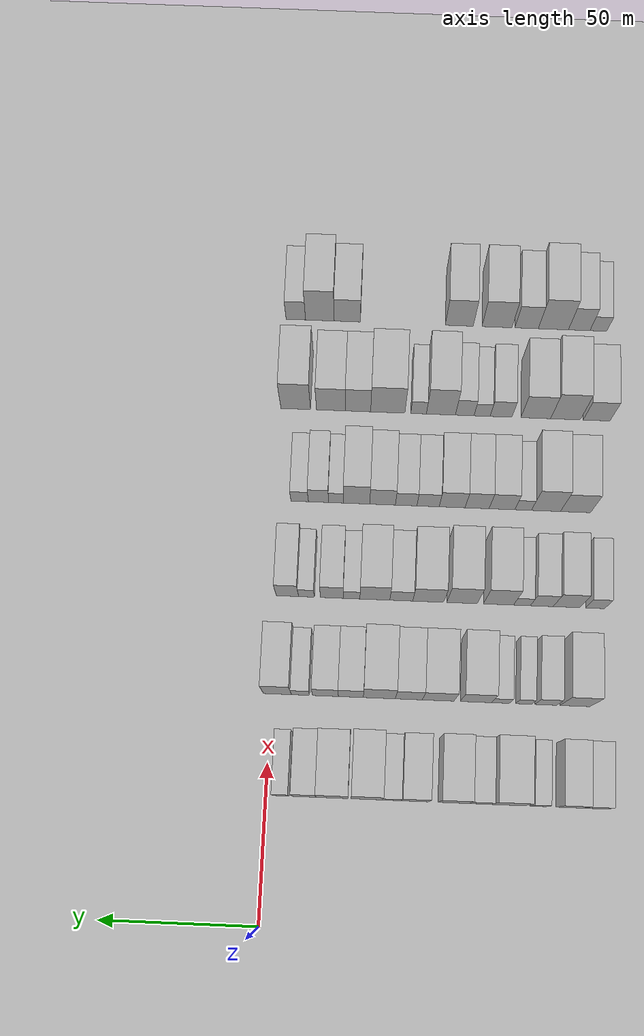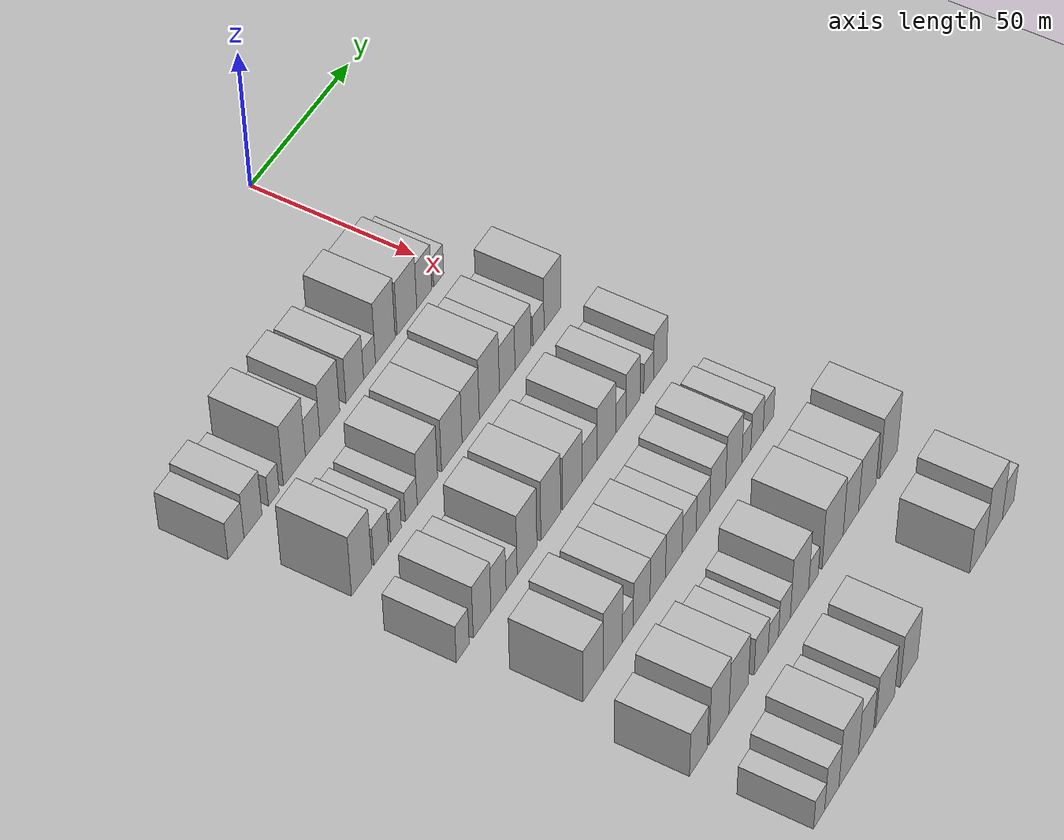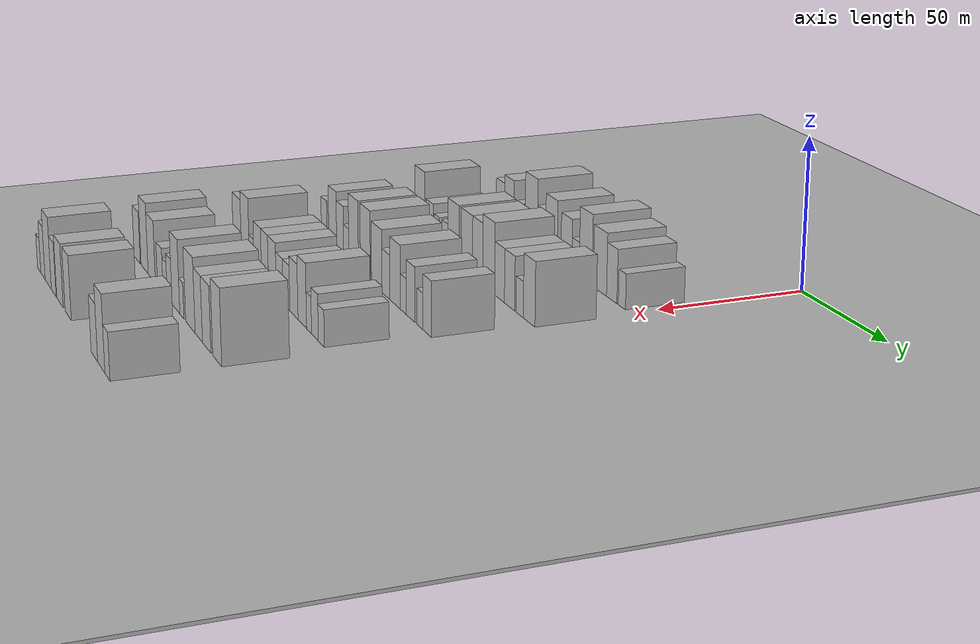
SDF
<sdf version="1.6">
 <world name="default">
  <include><name>ground_plane_1</name><uri>model://HANNAS_ground_plane</uri></include>
  <include>
   <name>ground_plane_2</name>
   <uri>model://HANNAS_ground_plane</uri>
   <pose>100 0 0  0 0 0</pose>
  </include>
  <model name="building_53">
   <static>1</static>
   <pose>50.0000 -103.3089 0 0.000000 0.000000 0.000000</pose>
   <link name="link">
    <pose>0 0 7.50 0 0 0</pose>
    <collision name="collision"><geometry><box><size>20.0000 7.4060 15.0000</size></box></geometry></collision>
    <visual name="visual">
     <cast_shadows>0</cast_shadows>
     <geometry><box><size>20.0000 7.4060 15.0000</size></box></geometry>
     <material>
      <script>
       <uri>model://HANNAS_wall/materials/scripts</uri>
       <uri>model://HANNAS_wall/materials/textures</uri>
       <name>vrc/HANNAS_wall</name>
      </script>
     </material>
    </visual>
   </link>
  </model>
  <model name="building_54">
   <static>1</static>
   <pose>50.0000 -95.4182 0 0.000000 0.000000 0.000000</pose>
   <link name="link">
    <pose>0 0 9.00 0 0 0</pose>
    <collision name="collision"><geometry><box><size>20.0000 8.3755 18.0000</size></box></geometry></collision>
    <visual name="visual">
     <cast_shadows>0</cast_shadows>
     <geometry><box><size>20.0000 8.3755 18.0000</size></box></geometry>
     <material>
      <script>
       <uri>model://HANNAS_wall/materials/scripts</uri>
       <uri>model://HANNAS_wall/materials/textures</uri>
       <name>vrc/HANNAS_wall</name>
      </script>
     </material>
    </visual>
   </link>
  </model>
  <model name="building_55">
   <static>1</static>
   <pose>50.0000 -85.7051 0 0.000000 0.000000 0.000000</pose>
   <link name="link">
    <pose>0 0 6.00 0 0 0</pose>
    <collision name="collision"><geometry><box><size>20.0000 5.0507 12.0000</size></box></geometry></collision>
    <visual name="visual">
     <cast_shadows>0</cast_shadows>
     <geometry><box><size>20.0000 5.0507 12.0000</size></box></geometry>
     <material>
      <script>
       <uri>model://HANNAS_wall/materials/scripts</uri>
       <uri>model://HANNAS_wall/materials/textures</uri>
       <name>vrc/HANNAS_wall</name>
      </script>
     </material>
    </visual>
   </link>
  </model>
  <model name="building_56">
   <static>1</static>
   <pose>50.0000 -75.9597 0 0.000000 0.000000 0.000000</pose>
   <link name="link">
    <pose>0 0 12.00 0 0 0</pose>
    <collision name="collision"><geometry><box><size>20.0000 10.4400 24.0000</size></box></geometry></collision>
    <visual name="visual">
     <cast_shadows>0</cast_shadows>
     <geometry><box><size>20.0000 10.4400 24.0000</size></box></geometry>
     <material>
      <script>
       <uri>model://HANNAS_wall/materials/scripts</uri>
       <uri>model://HANNAS_wall/materials/textures</uri>
       <name>vrc/HANNAS_wall</name>
      </script>
     </material>
    </visual>
   </link>
  </model>
  <model name="building_57">
   <static>1</static>
   <pose>50.0000 -67.2400 0 0.000000 0.000000 0.000000</pose>
   <link name="link">
    <pose>0 0 7.50 0 0 0</pose>
    <collision name="collision"><geometry><box><size>20.0000 6.9994 15.0000</size></box></geometry></collision>
    <visual name="visual">
     <cast_shadows>0</cast_shadows>
     <geometry><box><size>20.0000 6.9994 15.0000</size></box></geometry>
     <material>
      <script>
       <uri>model://HANNAS_wall/materials/scripts</uri>
       <uri>model://HANNAS_wall/materials/textures</uri>
       <name>vrc/HANNAS_wall</name>
      </script>
     </material>
    </visual>
   </link>
  </model>
  <model name="building_58">
   <static>1</static>
   <pose>50.0000 -58.9612 0 0.000000 0.000000 0.000000</pose>
   <link name="link">
    <pose>0 0 10.50 0 0 0</pose>
    <collision name="collision"><geometry><box><size>20.0000 9.5583 21.0000</size></box></geometry></collision>
    <visual name="visual">
     <cast_shadows>0</cast_shadows>
     <geometry><box><size>20.0000 9.5583 21.0000</size></box></geometry>
     <material>
      <script>
       <uri>model://HANNAS_wall/materials/scripts</uri>
       <uri>model://HANNAS_wall/materials/textures</uri>
       <name>vrc/HANNAS_wall</name>
      </script>
     </material>
    </visual>
   </link>
  </model>
  <model name="building_59">
   <static>1</static>
   <pose>50.0000 -46.8524 0 0.000000 0.000000 0.000000</pose>
   <link name="link">
    <pose>0 0 9.00 0 0 0</pose>
    <collision name="collision"><geometry><box><size>20.0000 8.6594 18.0000</size></box></geometry></collision>
    <visual name="visual">
     <cast_shadows>0</cast_shadows>
     <geometry><box><size>20.0000 8.6594 18.0000</size></box></geometry>
     <material>
      <script>
       <uri>model://HANNAS_wall/materials/scripts</uri>
       <uri>model://HANNAS_wall/materials/textures</uri>
       <name>vrc/HANNAS_wall</name>
      </script>
     </material>
    </visual>
   </link>
  </model>
  <model name="building_60">
   <static>1</static>
   <pose>50.0000 -39.5845 0 0.000000 0.000000 0.000000</pose>
   <link name="link">
    <pose>0 0 6.00 0 0 0</pose>
    <collision name="collision"><geometry><box><size>20.0000 5.8764 12.0000</size></box></geometry></collision>
    <visual name="visual">
     <cast_shadows>0</cast_shadows>
     <geometry><box><size>20.0000 5.8764 12.0000</size></box></geometry>
     <material>
      <script>
       <uri>model://HANNAS_wall/materials/scripts</uri>
       <uri>model://HANNAS_wall/materials/textures</uri>
       <name>vrc/HANNAS_wall</name>
      </script>
     </material>
    </visual>
   </link>
  </model>
  <model name="building_61">
   <static>1</static>
   <pose>50.0000 -31.7604 0 0.000000 0.000000 0.000000</pose>
   <link name="link">
    <pose>0 0 12.00 0 0 0</pose>
    <collision name="collision"><geometry><box><size>20.0000 9.7716 24.0000</size></box></geometry></collision>
    <visual name="visual">
     <cast_shadows>0</cast_shadows>
     <geometry><box><size>20.0000 9.7716 24.0000</size></box></geometry>
     <material>
      <script>
       <uri>model://HANNAS_wall/materials/scripts</uri>
       <uri>model://HANNAS_wall/materials/textures</uri>
       <name>vrc/HANNAS_wall</name>
      </script>
     </material>
    </visual>
   </link>
  </model>
  <model name="building_62">
   <static>1</static>
   <pose>50.0000 -20.9201 0 0.000000 0.000000 0.000000</pose>
   <link name="link">
    <pose>0 0 10.50 0 0 0</pose>
    <collision name="collision"><geometry><box><size>20.0000 9.9090 21.0000</size></box></geometry></collision>
    <visual name="visual">
     <cast_shadows>0</cast_shadows>
     <geometry><box><size>20.0000 9.9090 21.0000</size></box></geometry>
     <material>
      <script>
       <uri>model://HANNAS_wall/materials/scripts</uri>
       <uri>model://HANNAS_wall/materials/textures</uri>
       <name>vrc/HANNAS_wall</name>
      </script>
     </material>
    </visual>
   </link>
  </model>
  <model name="building_63">
   <static>1</static>
   <pose>50.0000 -12.1721 0 0.000000 0.000000 0.000000</pose>
   <link name="link">
    <pose>0 0 9.00 0 0 0</pose>
    <collision name="collision"><geometry><box><size>20.0000 7.5871 18.0000</size></box></geometry></collision>
    <visual name="visual">
     <cast_shadows>0</cast_shadows>
     <geometry><box><size>20.0000 7.5871 18.0000</size></box></geometry>
     <material>
      <script>
       <uri>model://HANNAS_wall/materials/scripts</uri>
       <uri>model://HANNAS_wall/materials/textures</uri>
       <name>vrc/HANNAS_wall</name>
      </script>
     </material>
    </visual>
   </link>
  </model>
  <model name="building_64">
   <static>1</static>
   <pose>50.0000 -4.8133 0 0.000000 0.000000 0.000000</pose>
   <link name="link">
    <pose>0 0 6.00 0 0 0</pose>
    <collision name="collision"><geometry><box><size>20.0000 5.1306 12.0000</size></box></geometry></collision>
    <visual name="visual">
     <cast_shadows>0</cast_shadows>
     <geometry><box><size>20.0000 5.1306 12.0000</size></box></geometry>
     <material>
      <script>
       <uri>model://HANNAS_wall/materials/scripts</uri>
       <uri>model://HANNAS_wall/materials/textures</uri>
       <name>vrc/HANNAS_wall</name>
      </script>
     </material>
    </visual>
   </link>
  </model>
  <model name="building_175">
   <static>1</static>
   <pose>82.0000 -97.1212 0 0.000000 0.000000 0.000000</pose>
   <link name="link">
    <pose>0 0 12.00 0 0 0</pose>
    <collision name="collision"><geometry><box><size>20.0000 9.6099 24.0000</size></box></geometry></collision>
    <visual name="visual">
     <cast_shadows>0</cast_shadows>
     <geometry><box><size>20.0000 9.6099 24.0000</size></box></geometry>
     <material>
      <script>
       <uri>model://HANNAS_wall/materials/scripts</uri>
       <uri>model://HANNAS_wall/materials/textures</uri>
       <name>vrc/HANNAS_wall</name>
      </script>
     </material>
    </visual>
   </link>
  </model>
  <model name="building_176">
   <static>1</static>
   <pose>82.0000 -87.8058 0 0.000000 0.000000 0.000000</pose>
   <link name="link">
    <pose>0 0 7.50 0 0 0</pose>
    <collision name="collision"><geometry><box><size>20.0000 7.0210 15.0000</size></box></geometry></collision>
    <visual name="visual">
     <cast_shadows>0</cast_shadows>
     <geometry><box><size>20.0000 7.0210 15.0000</size></box></geometry>
     <material>
      <script>
       <uri>model://HANNAS_wall/materials/scripts</uri>
       <uri>model://HANNAS_wall/materials/textures</uri>
       <name>vrc/HANNAS_wall</name>
      </script>
     </material>
    </visual>
   </link>
  </model>
  <model name="building_177">
   <static>1</static>
   <pose>82.0000 -80.7392 0 0.000000 0.000000 0.000000</pose>
   <link name="link">
    <pose>0 0 6.00 0 0 0</pose>
    <collision name="collision"><geometry><box><size>20.0000 5.1122 12.0000</size></box></geometry></collision>
    <visual name="visual">
     <cast_shadows>0</cast_shadows>
     <geometry><box><size>20.0000 5.1122 12.0000</size></box></geometry>
     <material>
      <script>
       <uri>model://HANNAS_wall/materials/scripts</uri>
       <uri>model://HANNAS_wall/materials/textures</uri>
       <name>vrc/HANNAS_wall</name>
      </script>
     </material>
    </visual>
   </link>
  </model>
  <model name="building_178">
   <static>1</static>
   <pose>82.0000 -73.3122 0 0.000000 0.000000 0.000000</pose>
   <link name="link">
    <pose>0 0 6.00 0 0 0</pose>
    <collision name="collision"><geometry><box><size>20.0000 5.7417 12.0000</size></box></geometry></collision>
    <visual name="visual">
     <cast_shadows>0</cast_shadows>
     <geometry><box><size>20.0000 5.7417 12.0000</size></box></geometry>
     <material>
      <script>
       <uri>model://HANNAS_wall/materials/scripts</uri>
       <uri>model://HANNAS_wall/materials/textures</uri>
       <name>vrc/HANNAS_wall</name>
      </script>
     </material>
    </visual>
   </link>
  </model>
  <model name="building_179">
   <static>1</static>
   <pose>82.0000 -65.4597 0 0.000000 0.000000 0.000000</pose>
   <link name="link">
    <pose>0 0 10.50 0 0 0</pose>
    <collision name="collision"><geometry><box><size>20.0000 9.9633 21.0000</size></box></geometry></collision>
    <visual name="visual">
     <cast_shadows>0</cast_shadows>
     <geometry><box><size>20.0000 9.9633 21.0000</size></box></geometry>
     <material>
      <script>
       <uri>model://HANNAS_wall/materials/scripts</uri>
       <uri>model://HANNAS_wall/materials/textures</uri>
       <name>vrc/HANNAS_wall</name>
      </script>
     </material>
    </visual>
   </link>
  </model>
  <model name="building_180">
   <static>1</static>
   <pose>82.0000 -53.4009 0 0.000000 0.000000 0.000000</pose>
   <link name="link">
    <pose>0 0 10.50 0 0 0</pose>
    <collision name="collision"><geometry><box><size>20.0000 10.1542 21.0000</size></box></geometry></collision>
    <visual name="visual">
     <cast_shadows>0</cast_shadows>
     <geometry><box><size>20.0000 10.1542 21.0000</size></box></geometry>
     <material>
      <script>
       <uri>model://HANNAS_wall/materials/scripts</uri>
       <uri>model://HANNAS_wall/materials/textures</uri>
       <name>vrc/HANNAS_wall</name>
      </script>
     </material>
    </visual>
   </link>
  </model>
  <model name="building_181">
   <static>1</static>
   <pose>82.0000 -43.9922 0 0.000000 0.000000 0.000000</pose>
   <link name="link">
    <pose>0 0 10.50 0 0 0</pose>
    <collision name="collision"><geometry><box><size>20.0000 8.6633 21.0000</size></box></geometry></collision>
    <visual name="visual">
     <cast_shadows>0</cast_shadows>
     <geometry><box><size>20.0000 8.6633 21.0000</size></box></geometry>
     <material>
      <script>
       <uri>model://HANNAS_wall/materials/scripts</uri>
       <uri>model://HANNAS_wall/materials/textures</uri>
       <name>vrc/HANNAS_wall</name>
      </script>
     </material>
    </visual>
   </link>
  </model>
  <model name="building_182">
   <static>1</static>
   <pose>82.0000 -34.5656 0 0.000000 0.000000 0.000000</pose>
   <link name="link">
    <pose>0 0 12.00 0 0 0</pose>
    <collision name="collision"><geometry><box><size>20.0000 10.1898 24.0000</size></box></geometry></collision>
    <visual name="visual">
     <cast_shadows>0</cast_shadows>
     <geometry><box><size>20.0000 10.1898 24.0000</size></box></geometry>
     <material>
      <script>
       <uri>model://HANNAS_wall/materials/scripts</uri>
       <uri>model://HANNAS_wall/materials/textures</uri>
       <name>vrc/HANNAS_wall</name>
      </script>
     </material>
    </visual>
   </link>
  </model>
  <model name="building_183">
   <static>1</static>
   <pose>82.0000 -25.4855 0 0.000000 0.000000 0.000000</pose>
   <link name="link">
    <pose>0 0 9.00 0 0 0</pose>
    <collision name="collision"><geometry><box><size>20.0000 7.9705 18.0000</size></box></geometry></collision>
    <visual name="visual">
     <cast_shadows>0</cast_shadows>
     <geometry><box><size>20.0000 7.9705 18.0000</size></box></geometry>
     <material>
      <script>
       <uri>model://HANNAS_wall/materials/scripts</uri>
       <uri>model://HANNAS_wall/materials/textures</uri>
       <name>vrc/HANNAS_wall</name>
      </script>
     </material>
    </visual>
   </link>
  </model>
  <model name="building_184">
   <static>1</static>
   <pose>82.0000 -17.3915 0 0.000000 0.000000 0.000000</pose>
   <link name="link">
    <pose>0 0 9.00 0 0 0</pose>
    <collision name="collision"><geometry><box><size>20.0000 8.2176 18.0000</size></box></geometry></collision>
    <visual name="visual">
     <cast_shadows>0</cast_shadows>
     <geometry><box><size>20.0000 8.2176 18.0000</size></box></geometry>
     <material>
      <script>
       <uri>model://HANNAS_wall/materials/scripts</uri>
       <uri>model://HANNAS_wall/materials/textures</uri>
       <name>vrc/HANNAS_wall</name>
      </script>
     </material>
    </visual>
   </link>
  </model>
  <model name="building_185">
   <static>1</static>
   <pose>82.0000 -9.3888 0 0.000000 0.000000 0.000000</pose>
   <link name="link">
    <pose>0 0 6.00 0 0 0</pose>
    <collision name="collision"><geometry><box><size>20.0000 5.7878 12.0000</size></box></geometry></collision>
    <visual name="visual">
     <cast_shadows>0</cast_shadows>
     <geometry><box><size>20.0000 5.7878 12.0000</size></box></geometry>
     <material>
      <script>
       <uri>model://HANNAS_wall/materials/scripts</uri>
       <uri>model://HANNAS_wall/materials/textures</uri>
       <name>vrc/HANNAS_wall</name>
      </script>
     </material>
    </visual>
   </link>
  </model>
  <model name="building_186">
   <static>1</static>
   <pose>82.0000 -2.0160 0 0.000000 0.000000 0.000000</pose>
   <link name="link">
    <pose>0 0 10.50 0 0 0</pose>
    <collision name="collision"><geometry><box><size>20.0000 8.9577 21.0000</size></box></geometry></collision>
    <visual name="visual">
     <cast_shadows>0</cast_shadows>
     <geometry><box><size>20.0000 8.9577 21.0000</size></box></geometry>
     <material>
      <script>
       <uri>model://HANNAS_wall/materials/scripts</uri>
       <uri>model://HANNAS_wall/materials/textures</uri>
       <name>vrc/HANNAS_wall</name>
      </script>
     </material>
    </visual>
   </link>
  </model>
  <model name="building_290">
   <static>1</static>
   <pose>114.0000 -103.5903 0 0.000000 0.000000 0.000000</pose>
   <link name="link">
    <pose>0 0 7.50 0 0 0</pose>
    <collision name="collision"><geometry><box><size>20.0000 6.1789 15.0000</size></box></geometry></collision>
    <visual name="visual">
     <cast_shadows>0</cast_shadows>
     <geometry><box><size>20.0000 6.1789 15.0000</size></box></geometry>
     <material>
      <script>
       <uri>model://HANNAS_wall/materials/scripts</uri>
       <uri>model://HANNAS_wall/materials/textures</uri>
       <name>vrc/HANNAS_wall</name>
      </script>
     </material>
    </visual>
   </link>
  </model>
  <model name="building_291">
   <static>1</static>
   <pose>114.0000 -94.2237 0 0.000000 0.000000 0.000000</pose>
   <link name="link">
    <pose>0 0 10.50 0 0 0</pose>
    <collision name="collision"><geometry><box><size>20.0000 8.5543 21.0000</size></box></geometry></collision>
    <visual name="visual">
     <cast_shadows>0</cast_shadows>
     <geometry><box><size>20.0000 8.5543 21.0000</size></box></geometry>
     <material>
      <script>
       <uri>model://HANNAS_wall/materials/scripts</uri>
       <uri>model://HANNAS_wall/materials/textures</uri>
       <name>vrc/HANNAS_wall</name>
      </script>
     </material>
    </visual>
   </link>
  </model>
  <model name="building_292">
   <static>1</static>
   <pose>114.0000 -86.2516 0 0.000000 0.000000 0.000000</pose>
   <link name="link">
    <pose>0 0 9.00 0 0 0</pose>
    <collision name="collision"><geometry><box><size>20.0000 7.3898 18.0000</size></box></geometry></collision>
    <visual name="visual">
     <cast_shadows>0</cast_shadows>
     <geometry><box><size>20.0000 7.3898 18.0000</size></box></geometry>
     <material>
      <script>
       <uri>model://HANNAS_wall/materials/scripts</uri>
       <uri>model://HANNAS_wall/materials/textures</uri>
       <name>vrc/HANNAS_wall</name>
      </script>
     </material>
    </visual>
   </link>
  </model>
  <model name="building_293">
   <static>1</static>
   <pose>114.0000 -79.8298 0 0.000000 0.000000 0.000000</pose>
   <link name="link">
    <pose>0 0 6.00 0 0 0</pose>
    <collision name="collision"><geometry><box><size>20.0000 5.4539 12.0000</size></box></geometry></collision>
    <visual name="visual">
     <cast_shadows>0</cast_shadows>
     <geometry><box><size>20.0000 5.4539 12.0000</size></box></geometry>
     <material>
      <script>
       <uri>model://HANNAS_wall/materials/scripts</uri>
       <uri>model://HANNAS_wall/materials/textures</uri>
       <name>vrc/HANNAS_wall</name>
      </script>
     </material>
    </visual>
   </link>
  </model>
  <model name="building_294">
   <static>1</static>
   <pose>114.0000 -72.1921 0 0.000000 0.000000 0.000000</pose>
   <link name="link">
    <pose>0 0 12.00 0 0 0</pose>
    <collision name="collision"><geometry><box><size>20.0000 9.8214 24.0000</size></box></geometry></collision>
    <visual name="visual">
     <cast_shadows>0</cast_shadows>
     <geometry><box><size>20.0000 9.8214 24.0000</size></box></geometry>
     <material>
      <script>
       <uri>model://HANNAS_wall/materials/scripts</uri>
       <uri>model://HANNAS_wall/materials/textures</uri>
       <name>vrc/HANNAS_wall</name>
      </script>
     </material>
    </visual>
   </link>
  </model>
  <model name="building_295">
   <static>1</static>
   <pose>114.0000 -60.3206 0 0.000000 0.000000 0.000000</pose>
   <link name="link">
    <pose>0 0 12.00 0 0 0</pose>
    <collision name="collision"><geometry><box><size>20.0000 9.9215 24.0000</size></box></geometry></collision>
    <visual name="visual">
     <cast_shadows>0</cast_shadows>
     <geometry><box><size>20.0000 9.9215 24.0000</size></box></geometry>
     <material>
      <script>
       <uri>model://HANNAS_wall/materials/scripts</uri>
       <uri>model://HANNAS_wall/materials/textures</uri>
       <name>vrc/HANNAS_wall</name>
      </script>
     </material>
    </visual>
   </link>
  </model>
  <model name="building_296">
   <static>1</static>
   <pose>114.0000 -49.3305 0 0.000000 0.000000 0.000000</pose>
   <link name="link">
    <pose>0 0 10.50 0 0 0</pose>
    <collision name="collision"><geometry><box><size>20.0000 10.0587 21.0000</size></box></geometry></collision>
    <visual name="visual">
     <cast_shadows>0</cast_shadows>
     <geometry><box><size>20.0000 10.0587 21.0000</size></box></geometry>
     <material>
      <script>
       <uri>model://HANNAS_wall/materials/scripts</uri>
       <uri>model://HANNAS_wall/materials/textures</uri>
       <name>vrc/HANNAS_wall</name>
      </script>
     </material>
    </visual>
   </link>
  </model>
  <model name="building_297">
   <static>1</static>
   <pose>114.0000 -40.5754 0 0.000000 0.000000 0.000000</pose>
   <link name="link">
    <pose>0 0 7.50 0 0 0</pose>
    <collision name="collision"><geometry><box><size>20.0000 7.4514 15.0000</size></box></geometry></collision>
    <visual name="visual">
     <cast_shadows>0</cast_shadows>
     <geometry><box><size>20.0000 7.4514 15.0000</size></box></geometry>
     <material>
      <script>
       <uri>model://HANNAS_wall/materials/scripts</uri>
       <uri>model://HANNAS_wall/materials/textures</uri>
       <name>vrc/HANNAS_wall</name>
      </script>
     </material>
    </visual>
   </link>
  </model>
  <model name="building_298">
   <static>1</static>
   <pose>114.0000 -32.0047 0 0.000000 0.000000 0.000000</pose>
   <link name="link">
    <pose>0 0 10.50 0 0 0</pose>
    <collision name="collision"><geometry><box><size>20.0000 9.6901 21.0000</size></box></geometry></collision>
    <visual name="visual">
     <cast_shadows>0</cast_shadows>
     <geometry><box><size>20.0000 9.6901 21.0000</size></box></geometry>
     <material>
      <script>
       <uri>model://HANNAS_wall/materials/scripts</uri>
       <uri>model://HANNAS_wall/materials/textures</uri>
       <name>vrc/HANNAS_wall</name>
      </script>
     </material>
    </visual>
   </link>
  </model>
  <model name="building_299">
   <static>1</static>
   <pose>114.0000 -24.4694 0 0.000000 0.000000 0.000000</pose>
   <link name="link">
    <pose>0 0 6.00 0 0 0</pose>
    <collision name="collision"><geometry><box><size>20.0000 5.3804 12.0000</size></box></geometry></collision>
    <visual name="visual">
     <cast_shadows>0</cast_shadows>
     <geometry><box><size>20.0000 5.3804 12.0000</size></box></geometry>
     <material>
      <script>
       <uri>model://HANNAS_wall/materials/scripts</uri>
       <uri>model://HANNAS_wall/materials/textures</uri>
       <name>vrc/HANNAS_wall</name>
      </script>
     </material>
    </visual>
   </link>
  </model>
  <model name="building_300">
   <static>1</static>
   <pose>114.0000 -18.0648 0 0.000000 0.000000 0.000000</pose>
   <link name="link">
    <pose>0 0 9.00 0 0 0</pose>
    <collision name="collision"><geometry><box><size>20.0000 7.4289 18.0000</size></box></geometry></collision>
    <visual name="visual">
     <cast_shadows>0</cast_shadows>
     <geometry><box><size>20.0000 7.4289 18.0000</size></box></geometry>
     <material>
      <script>
       <uri>model://HANNAS_wall/materials/scripts</uri>
       <uri>model://HANNAS_wall/materials/textures</uri>
       <name>vrc/HANNAS_wall</name>
      </script>
     </material>
    </visual>
   </link>
  </model>
  <model name="building_301">
   <static>1</static>
   <pose>114.0000 -9.7806 0 0.000000 0.000000 0.000000</pose>
   <link name="link">
    <pose>0 0 6.00 0 0 0</pose>
    <collision name="collision"><geometry><box><size>20.0000 5.1394 12.0000</size></box></geometry></collision>
    <visual name="visual">
     <cast_shadows>0</cast_shadows>
     <geometry><box><size>20.0000 5.1394 12.0000</size></box></geometry>
     <material>
      <script>
       <uri>model://HANNAS_wall/materials/scripts</uri>
       <uri>model://HANNAS_wall/materials/textures</uri>
       <name>vrc/HANNAS_wall</name>
      </script>
     </material>
    </visual>
   </link>
  </model>
  <model name="building_302">
   <static>1</static>
   <pose>114.0000 -3.5918 0 0.000000 0.000000 0.000000</pose>
   <link name="link">
    <pose>0 0 9.00 0 0 0</pose>
    <collision name="collision"><geometry><box><size>20.0000 7.2382 18.0000</size></box></geometry></collision>
    <visual name="visual">
     <cast_shadows>0</cast_shadows>
     <geometry><box><size>20.0000 7.2382 18.0000</size></box></geometry>
     <material>
      <script>
       <uri>model://HANNAS_wall/materials/scripts</uri>
       <uri>model://HANNAS_wall/materials/textures</uri>
       <name>vrc/HANNAS_wall</name>
      </script>
     </material>
    </visual>
   </link>
  </model>
  <model name="building_410">
   <static>1</static>
   <pose>146.0000 -97.1115 0 0.000000 0.000000 0.000000</pose>
   <link name="link">
    <pose>0 0 10.50 0 0 0</pose>
    <collision name="collision"><geometry><box><size>20.0000 9.9245 21.0000</size></box></geometry></collision>
    <visual name="visual">
     <cast_shadows>0</cast_shadows>
     <geometry><box><size>20.0000 9.9245 21.0000</size></box></geometry>
     <material>
      <script>
       <uri>model://HANNAS_wall/materials/scripts</uri>
       <uri>model://HANNAS_wall/materials/textures</uri>
       <name>vrc/HANNAS_wall</name>
      </script>
     </material>
    </visual>
   </link>
  </model>
  <model name="building_411">
   <static>1</static>
   <pose>146.0000 -87.3449 0 0.000000 0.000000 0.000000</pose>
   <link name="link">
    <pose>0 0 12.00 0 0 0</pose>
    <collision name="collision"><geometry><box><size>20.0000 9.6089 24.0000</size></box></geometry></collision>
    <visual name="visual">
     <cast_shadows>0</cast_shadows>
     <geometry><box><size>20.0000 9.6089 24.0000</size></box></geometry>
     <material>
      <script>
       <uri>model://HANNAS_wall/materials/scripts</uri>
       <uri>model://HANNAS_wall/materials/textures</uri>
       <name>vrc/HANNAS_wall</name>
      </script>
     </material>
    </visual>
   </link>
  </model>
  <model name="building_412">
   <static>1</static>
   <pose>146.0000 -79.7929 0 0.000000 0.000000 0.000000</pose>
   <link name="link">
    <pose>0 0 6.00 0 0 0</pose>
    <collision name="collision"><geometry><box><size>20.0000 5.4950 12.0000</size></box></geometry></collision>
    <visual name="visual">
     <cast_shadows>0</cast_shadows>
     <geometry><box><size>20.0000 5.4950 12.0000</size></box></geometry>
     <material>
      <script>
       <uri>model://HANNAS_wall/materials/scripts</uri>
       <uri>model://HANNAS_wall/materials/textures</uri>
       <name>vrc/HANNAS_wall</name>
      </script>
     </material>
    </visual>
   </link>
  </model>
  <model name="building_413">
   <static>1</static>
   <pose>146.0000 -72.8061 0 0.000000 0.000000 0.000000</pose>
   <link name="link">
    <pose>0 0 9.00 0 0 0</pose>
    <collision name="collision"><geometry><box><size>20.0000 8.4786 18.0000</size></box></geometry></collision>
    <visual name="visual">
     <cast_shadows>0</cast_shadows>
     <geometry><box><size>20.0000 8.4786 18.0000</size></box></geometry>
     <material>
      <script>
       <uri>model://HANNAS_wall/materials/scripts</uri>
       <uri>model://HANNAS_wall/materials/textures</uri>
       <name>vrc/HANNAS_wall</name>
      </script>
     </material>
    </visual>
   </link>
  </model>
  <model name="building_414">
   <static>1</static>
   <pose>146.0000 -64.6015 0 0.000000 0.000000 0.000000</pose>
   <link name="link">
    <pose>0 0 9.00 0 0 0</pose>
    <collision name="collision"><geometry><box><size>20.0000 7.9306 18.0000</size></box></geometry></collision>
    <visual name="visual">
     <cast_shadows>0</cast_shadows>
     <geometry><box><size>20.0000 7.9306 18.0000</size></box></geometry>
     <material>
      <script>
       <uri>model://HANNAS_wall/materials/scripts</uri>
       <uri>model://HANNAS_wall/materials/textures</uri>
       <name>vrc/HANNAS_wall</name>
      </script>
     </material>
    </visual>
   </link>
  </model>
  <model name="building_415">
   <static>1</static>
   <pose>146.0000 -56.3581 0 0.000000 0.000000 0.000000</pose>
   <link name="link">
    <pose>0 0 9.00 0 0 0</pose>
    <collision name="collision"><geometry><box><size>20.0000 8.5563 18.0000</size></box></geometry></collision>
    <visual name="visual">
     <cast_shadows>0</cast_shadows>
     <geometry><box><size>20.0000 8.5563 18.0000</size></box></geometry>
     <material>
      <script>
       <uri>model://HANNAS_wall/materials/scripts</uri>
       <uri>model://HANNAS_wall/materials/textures</uri>
       <name>vrc/HANNAS_wall</name>
      </script>
     </material>
    </visual>
   </link>
  </model>
  <model name="building_416">
   <static>1</static>
   <pose>146.0000 -48.4056 0 0.000000 0.000000 0.000000</pose>
   <link name="link">
    <pose>0 0 7.50 0 0 0</pose>
    <collision name="collision"><geometry><box><size>20.0000 7.3488 15.0000</size></box></geometry></collision>
    <visual name="visual">
     <cast_shadows>0</cast_shadows>
     <geometry><box><size>20.0000 7.3488 15.0000</size></box></geometry>
     <material>
      <script>
       <uri>model://HANNAS_wall/materials/scripts</uri>
       <uri>model://HANNAS_wall/materials/textures</uri>
       <name>vrc/HANNAS_wall</name>
      </script>
     </material>
    </visual>
   </link>
  </model>
  <model name="building_417">
   <static>1</static>
   <pose>146.0000 -41.1837 0 0.000000 0.000000 0.000000</pose>
   <link name="link">
    <pose>0 0 7.50 0 0 0</pose>
    <collision name="collision"><geometry><box><size>20.0000 7.0951 15.0000</size></box></geometry></collision>
    <visual name="visual">
     <cast_shadows>0</cast_shadows>
     <geometry><box><size>20.0000 7.0951 15.0000</size></box></geometry>
     <material>
      <script>
       <uri>model://HANNAS_wall/materials/scripts</uri>
       <uri>model://HANNAS_wall/materials/textures</uri>
       <name>vrc/HANNAS_wall</name>
      </script>
     </material>
    </visual>
   </link>
  </model>
  <model name="building_418">
   <static>1</static>
   <pose>146.0000 -33.3931 0 0.000000 0.000000 0.000000</pose>
   <link name="link">
    <pose>0 0 9.00 0 0 0</pose>
    <collision name="collision"><geometry><box><size>20.0000 8.4860 18.0000</size></box></geometry></collision>
    <visual name="visual">
     <cast_shadows>0</cast_shadows>
     <geometry><box><size>20.0000 8.4860 18.0000</size></box></geometry>
     <material>
      <script>
       <uri>model://HANNAS_wall/materials/scripts</uri>
       <uri>model://HANNAS_wall/materials/textures</uri>
       <name>vrc/HANNAS_wall</name>
      </script>
     </material>
    </visual>
   </link>
  </model>
  <model name="building_419">
   <static>1</static>
   <pose>146.0000 -24.8218 0 0.000000 0.000000 0.000000</pose>
   <link name="link">
    <pose>0 0 10.50 0 0 0</pose>
    <collision name="collision"><geometry><box><size>20.0000 8.6566 21.0000</size></box></geometry></collision>
    <visual name="visual">
     <cast_shadows>0</cast_shadows>
     <geometry><box><size>20.0000 8.6566 21.0000</size></box></geometry>
     <material>
      <script>
       <uri>model://HANNAS_wall/materials/scripts</uri>
       <uri>model://HANNAS_wall/materials/textures</uri>
       <name>vrc/HANNAS_wall</name>
      </script>
     </material>
    </visual>
   </link>
  </model>
  <model name="building_420">
   <static>1</static>
   <pose>146.0000 -18.0325 0 0.000000 0.000000 0.000000</pose>
   <link name="link">
    <pose>0 0 6.00 0 0 0</pose>
    <collision name="collision"><geometry><box><size>20.0000 4.9220 12.0000</size></box></geometry></collision>
    <visual name="visual">
     <cast_shadows>0</cast_shadows>
     <geometry><box><size>20.0000 4.9220 12.0000</size></box></geometry>
     <material>
      <script>
       <uri>model://HANNAS_wall/materials/scripts</uri>
       <uri>model://HANNAS_wall/materials/textures</uri>
       <name>vrc/HANNAS_wall</name>
      </script>
     </material>
    </visual>
   </link>
  </model>
  <model name="building_421">
   <static>1</static>
   <pose>146.0000 -12.2362 0 0.000000 0.000000 0.000000</pose>
   <link name="link">
    <pose>0 0 7.50 0 0 0</pose>
    <collision name="collision"><geometry><box><size>20.0000 6.6707 15.0000</size></box></geometry></collision>
    <visual name="visual">
     <cast_shadows>0</cast_shadows>
     <geometry><box><size>20.0000 6.6707 15.0000</size></box></geometry>
     <material>
      <script>
       <uri>model://HANNAS_wall/materials/scripts</uri>
       <uri>model://HANNAS_wall/materials/textures</uri>
       <name>vrc/HANNAS_wall</name>
      </script>
     </material>
    </visual>
   </link>
  </model>
  <model name="building_422">
   <static>1</static>
   <pose>146.0000 -6.0219 0 0.000000 0.000000 0.000000</pose>
   <link name="link">
    <pose>0 0 6.00 0 0 0</pose>
    <collision name="collision"><geometry><box><size>20.0000 5.7579 12.0000</size></box></geometry></collision>
    <visual name="visual">
     <cast_shadows>0</cast_shadows>
     <geometry><box><size>20.0000 5.7579 12.0000</size></box></geometry>
     <material>
      <script>
       <uri>model://HANNAS_wall/materials/scripts</uri>
       <uri>model://HANNAS_wall/materials/textures</uri>
       <name>vrc/HANNAS_wall</name>
      </script>
     </material>
    </visual>
   </link>
  </model>
  <model name="building_530">
   <static>1</static>
   <pose>178.0000 -104.0766 0 0.000000 0.000000 0.000000</pose>
   <link name="link">
    <pose>0 0 9.00 0 0 0</pose>
    <collision name="collision"><geometry><box><size>20.0000 8.9507 18.0000</size></box></geometry></collision>
    <visual name="visual">
     <cast_shadows>0</cast_shadows>
     <geometry><box><size>20.0000 8.9507 18.0000</size></box></geometry>
     <material>
      <script>
       <uri>model://HANNAS_wall/materials/scripts</uri>
       <uri>model://HANNAS_wall/materials/textures</uri>
       <name>vrc/HANNAS_wall</name>
      </script>
     </material>
    </visual>
   </link>
  </model>
  <model name="building_531">
   <static>1</static>
   <pose>178.0000 -93.6136 0 0.000000 0.000000 0.000000</pose>
   <link name="link">
    <pose>0 0 12.00 0 0 0</pose>
    <collision name="collision"><geometry><box><size>20.0000 9.9754 24.0000</size></box></geometry></collision>
    <visual name="visual">
     <cast_shadows>0</cast_shadows>
     <geometry><box><size>20.0000 9.9754 24.0000</size></box></geometry>
     <material>
      <script>
       <uri>model://HANNAS_wall/materials/scripts</uri>
       <uri>model://HANNAS_wall/materials/textures</uri>
       <name>vrc/HANNAS_wall</name>
      </script>
     </material>
    </visual>
   </link>
  </model>
  <model name="building_532">
   <static>1</static>
   <pose>178.0000 -83.6519 0 0.000000 0.000000 0.000000</pose>
   <link name="link">
    <pose>0 0 10.50 0 0 0</pose>
    <collision name="collision"><geometry><box><size>20.0000 9.9479 21.0000</size></box></geometry></collision>
    <visual name="visual">
     <cast_shadows>0</cast_shadows>
     <geometry><box><size>20.0000 9.9479 21.0000</size></box></geometry>
     <material>
      <script>
       <uri>model://HANNAS_wall/materials/scripts</uri>
       <uri>model://HANNAS_wall/materials/textures</uri>
       <name>vrc/HANNAS_wall</name>
      </script>
     </material>
    </visual>
   </link>
  </model>
  <model name="building_533">
   <static>1</static>
   <pose>178.0000 -72.0275 0 0.000000 0.000000 0.000000</pose>
   <link name="link">
    <pose>0 0 7.50 0 0 0</pose>
    <collision name="collision"><geometry><box><size>20.0000 7.3011 15.0000</size></box></geometry></collision>
    <visual name="visual">
     <cast_shadows>0</cast_shadows>
     <geometry><box><size>20.0000 7.3011 15.0000</size></box></geometry>
     <material>
      <script>
       <uri>model://HANNAS_wall/materials/scripts</uri>
       <uri>model://HANNAS_wall/materials/textures</uri>
       <name>vrc/HANNAS_wall</name>
      </script>
     </material>
    </visual>
   </link>
  </model>
  <model name="building_534">
   <static>1</static>
   <pose>178.0000 -65.6768 0 0.000000 0.000000 0.000000</pose>
   <link name="link">
    <pose>0 0 6.00 0 0 0</pose>
    <collision name="collision"><geometry><box><size>20.0000 5.4002 12.0000</size></box></geometry></collision>
    <visual name="visual">
     <cast_shadows>0</cast_shadows>
     <geometry><box><size>20.0000 5.4002 12.0000</size></box></geometry>
     <material>
      <script>
       <uri>model://HANNAS_wall/materials/scripts</uri>
       <uri>model://HANNAS_wall/materials/textures</uri>
       <name>vrc/HANNAS_wall</name>
      </script>
     </material>
    </visual>
   </link>
  </model>
  <model name="building_535">
   <static>1</static>
   <pose>178.0000 -59.8448 0 0.000000 0.000000 0.000000</pose>
   <link name="link">
    <pose>0 0 7.50 0 0 0</pose>
    <collision name="collision"><geometry><box><size>20.0000 6.2638 15.0000</size></box></geometry></collision>
    <visual name="visual">
     <cast_shadows>0</cast_shadows>
     <geometry><box><size>20.0000 6.2638 15.0000</size></box></geometry>
     <material>
      <script>
       <uri>model://HANNAS_wall/materials/scripts</uri>
       <uri>model://HANNAS_wall/materials/textures</uri>
       <name>vrc/HANNAS_wall</name>
      </script>
     </material>
    </visual>
   </link>
  </model>
  <model name="building_536">
   <static>1</static>
   <pose>178.0000 -51.8433 0 0.000000 0.000000 0.000000</pose>
   <link name="link">
    <pose>0 0 12.00 0 0 0</pose>
    <collision name="collision"><geometry><box><size>20.0000 9.7392 24.0000</size></box></geometry></collision>
    <visual name="visual">
     <cast_shadows>0</cast_shadows>
     <geometry><box><size>20.0000 9.7392 24.0000</size></box></geometry>
     <material>
      <script>
       <uri>model://HANNAS_wall/materials/scripts</uri>
       <uri>model://HANNAS_wall/materials/textures</uri>
       <name>vrc/HANNAS_wall</name>
      </script>
     </material>
    </visual>
   </link>
  </model>
  <model name="building_537">
   <static>1</static>
   <pose>178.0000 -44.3717 0 0.000000 0.000000 0.000000</pose>
   <link name="link">
    <pose>0 0 6.00 0 0 0</pose>
    <collision name="collision"><geometry><box><size>20.0000 5.2041 12.0000</size></box></geometry></collision>
    <visual name="visual">
     <cast_shadows>0</cast_shadows>
     <geometry><box><size>20.0000 5.2041 12.0000</size></box></geometry>
     <material>
      <script>
       <uri>model://HANNAS_wall/materials/scripts</uri>
       <uri>model://HANNAS_wall/materials/textures</uri>
       <name>vrc/HANNAS_wall</name>
      </script>
     </material>
    </visual>
   </link>
  </model>
  <model name="building_538">
   <static>1</static>
   <pose>178.0000 -34.0308 0 0.000000 0.000000 0.000000</pose>
   <link name="link">
    <pose>0 0 12.00 0 0 0</pose>
    <collision name="collision"><geometry><box><size>20.0000 11.4777 24.0000</size></box></geometry></collision>
    <visual name="visual">
     <cast_shadows>0</cast_shadows>
     <geometry><box><size>20.0000 11.4777 24.0000</size></box></geometry>
     <material>
      <script>
       <uri>model://HANNAS_wall/materials/scripts</uri>
       <uri>model://HANNAS_wall/materials/textures</uri>
       <name>vrc/HANNAS_wall</name>
      </script>
     </material>
    </visual>
   </link>
  </model>
  <model name="building_539">
   <static>1</static>
   <pose>178.0000 -24.0410 0 0.000000 0.000000 0.000000</pose>
   <link name="link">
    <pose>0 0 10.50 0 0 0</pose>
    <collision name="collision"><geometry><box><size>20.0000 8.5019 21.0000</size></box></geometry></collision>
    <visual name="visual">
     <cast_shadows>0</cast_shadows>
     <geometry><box><size>20.0000 8.5019 21.0000</size></box></geometry>
     <material>
      <script>
       <uri>model://HANNAS_wall/materials/scripts</uri>
       <uri>model://HANNAS_wall/materials/textures</uri>
       <name>vrc/HANNAS_wall</name>
      </script>
     </material>
    </visual>
   </link>
  </model>
  <model name="building_540">
   <static>1</static>
   <pose>178.0000 -14.9490 0 0.000000 0.000000 0.000000</pose>
   <link name="link">
    <pose>0 0 10.50 0 0 0</pose>
    <collision name="collision"><geometry><box><size>20.0000 9.6821 21.0000</size></box></geometry></collision>
    <visual name="visual">
     <cast_shadows>0</cast_shadows>
     <geometry><box><size>20.0000 9.6821 21.0000</size></box></geometry>
     <material>
      <script>
       <uri>model://HANNAS_wall/materials/scripts</uri>
       <uri>model://HANNAS_wall/materials/textures</uri>
       <name>vrc/HANNAS_wall</name>
      </script>
     </material>
    </visual>
   </link>
  </model>
  <model name="building_541">
   <static>1</static>
   <pose>178.0000 -3.1385 0 0.000000 0.000000 0.000000</pose>
   <link name="link">
    <pose>0 0 12.00 0 0 0</pose>
    <collision name="collision"><geometry><box><size>20.0000 9.9390 24.0000</size></box></geometry></collision>
    <visual name="visual">
     <cast_shadows>0</cast_shadows>
     <geometry><box><size>20.0000 9.9390 24.0000</size></box></geometry>
     <material>
      <script>
       <uri>model://HANNAS_wall/materials/scripts</uri>
       <uri>model://HANNAS_wall/materials/textures</uri>
       <name>vrc/HANNAS_wall</name>
      </script>
     </material>
    </visual>
   </link>
  </model>
  <model name="building_650">
   <static>1</static>
   <pose>210.0000 -104.6910 0 0.000000 0.000000 0.000000</pose>
   <link name="link">
    <pose>0 0 6.00 0 0 0</pose>
    <collision name="collision"><geometry><box><size>20.0000 5.7456 12.0000</size></box></geometry></collision>
    <visual name="visual">
     <cast_shadows>0</cast_shadows>
     <geometry><box><size>20.0000 5.7456 12.0000</size></box></geometry>
     <material>
      <script>
       <uri>model://HANNAS_wall/materials/scripts</uri>
       <uri>model://HANNAS_wall/materials/textures</uri>
       <name>vrc/HANNAS_wall</name>
      </script>
     </material>
    </visual>
   </link>
  </model>
  <model name="building_651">
   <static>1</static>
   <pose>210.0000 -98.1462 0 0.000000 0.000000 0.000000</pose>
   <link name="link">
    <pose>0 0 9.00 0 0 0</pose>
    <collision name="collision"><geometry><box><size>20.0000 7.3439 18.0000</size></box></geometry></collision>
    <visual name="visual">
     <cast_shadows>0</cast_shadows>
     <geometry><box><size>20.0000 7.3439 18.0000</size></box></geometry>
     <material>
      <script>
       <uri>model://HANNAS_wall/materials/scripts</uri>
       <uri>model://HANNAS_wall/materials/textures</uri>
       <name>vrc/HANNAS_wall</name>
      </script>
     </material>
    </visual>
   </link>
  </model>
  <model name="building_652">
   <static>1</static>
   <pose>210.0000 -89.3401 0 0.000000 0.000000 0.000000</pose>
   <link name="link">
    <pose>0 0 12.00 0 0 0</pose>
    <collision name="collision"><geometry><box><size>20.0000 10.2684 24.0000</size></box></geometry></collision>
    <visual name="visual">
     <cast_shadows>0</cast_shadows>
     <geometry><box><size>20.0000 10.2684 24.0000</size></box></geometry>
     <material>
      <script>
       <uri>model://HANNAS_wall/materials/scripts</uri>
       <uri>model://HANNAS_wall/materials/textures</uri>
       <name>vrc/HANNAS_wall</name>
      </script>
     </material>
    </visual>
   </link>
  </model>
  <model name="building_653">
   <static>1</static>
   <pose>210.0000 -80.2306 0 0.000000 0.000000 0.000000</pose>
   <link name="link">
    <pose>0 0 9.00 0 0 0</pose>
    <collision name="collision"><geometry><box><size>20.0000 7.9508 18.0000</size></box></geometry></collision>
    <visual name="visual">
     <cast_shadows>0</cast_shadows>
     <geometry><box><size>20.0000 7.9508 18.0000</size></box></geometry>
     <material>
      <script>
       <uri>model://HANNAS_wall/materials/scripts</uri>
       <uri>model://HANNAS_wall/materials/textures</uri>
       <name>vrc/HANNAS_wall</name>
      </script>
     </material>
    </visual>
   </link>
  </model>
  <model name="building_654">
   <static>1</static>
   <pose>210.0000 -70.1499 0 0.000000 0.000000 0.000000</pose>
   <link name="link">
    <pose>0 0 10.50 0 0 0</pose>
    <collision name="collision"><geometry><box><size>20.0000 10.2105 21.0000</size></box></geometry></collision>
    <visual name="visual">
     <cast_shadows>0</cast_shadows>
     <geometry><box><size>20.0000 10.2105 21.0000</size></box></geometry>
     <material>
      <script>
       <uri>model://HANNAS_wall/materials/scripts</uri>
       <uri>model://HANNAS_wall/materials/textures</uri>
       <name>vrc/HANNAS_wall</name>
      </script>
     </material>
    </visual>
   </link>
  </model>
  <model name="building_655">
   <static>1</static>
   <pose>210.0000 -57.2914 0 0.000000 0.000000 0.000000</pose>
   <link name="link">
    <pose>0 0 10.50 0 0 0</pose>
    <collision name="collision"><geometry><box><size>20.0000 9.5065 21.0000</size></box></geometry></collision>
    <visual name="visual">
     <cast_shadows>0</cast_shadows>
     <geometry><box><size>20.0000 9.5065 21.0000</size></box></geometry>
     <material>
      <script>
       <uri>model://HANNAS_wall/materials/scripts</uri>
       <uri>model://HANNAS_wall/materials/textures</uri>
       <name>vrc/HANNAS_wall</name>
      </script>
     </material>
    </visual>
   </link>
  </model>
  <model name="building_656">
   <static>1</static>
   <pose>210.0000 -19.1461 0 0.000000 0.000000 0.000000</pose>
   <link name="link">
    <pose>0 0 9.00 0 0 0</pose>
    <collision name="collision"><geometry><box><size>20.0000 8.9280 18.0000</size></box></geometry></collision>
    <visual name="visual">
     <cast_shadows>0</cast_shadows>
     <geometry><box><size>20.0000 8.9280 18.0000</size></box></geometry>
     <material>
      <script>
       <uri>model://HANNAS_wall/materials/scripts</uri>
       <uri>model://HANNAS_wall/materials/textures</uri>
       <name>vrc/HANNAS_wall</name>
      </script>
     </material>
    </visual>
   </link>
  </model>
  <model name="building_657">
   <static>1</static>
   <pose>210.0000 -9.7979 0 0.000000 0.000000 0.000000</pose>
   <link name="link">
    <pose>0 0 12.00 0 0 0</pose>
    <collision name="collision"><geometry><box><size>20.0000 9.7684 24.0000</size></box></geometry></collision>
    <visual name="visual">
     <cast_shadows>0</cast_shadows>
     <geometry><box><size>20.0000 9.7684 24.0000</size></box></geometry>
     <material>
      <script>
       <uri>model://HANNAS_wall/materials/scripts</uri>
       <uri>model://HANNAS_wall/materials/textures</uri>
       <name>vrc/HANNAS_wall</name>
      </script>
     </material>
    </visual>
   </link>
  </model>
  <model name="building_658">
   <static>1</static>
   <pose>210.0000 -1.5853 0 0.000000 0.000000 0.000000</pose>
   <link name="link">
    <pose>0 0 7.50 0 0 0</pose>
    <collision name="collision"><geometry><box><size>20.0000 6.6567 15.0000</size></box></geometry></collision>
    <visual name="visual">
     <cast_shadows>0</cast_shadows>
     <geometry><box><size>20.0000 6.6567 15.0000</size></box></geometry>
     <material>
      <script>
       <uri>model://HANNAS_wall/materials/scripts</uri>
       <uri>model://HANNAS_wall/materials/textures</uri>
       <name>vrc/HANNAS_wall</name>
      </script>
     </material>
    </visual>
   </link>
  </model>
 </world>
</sdf>
